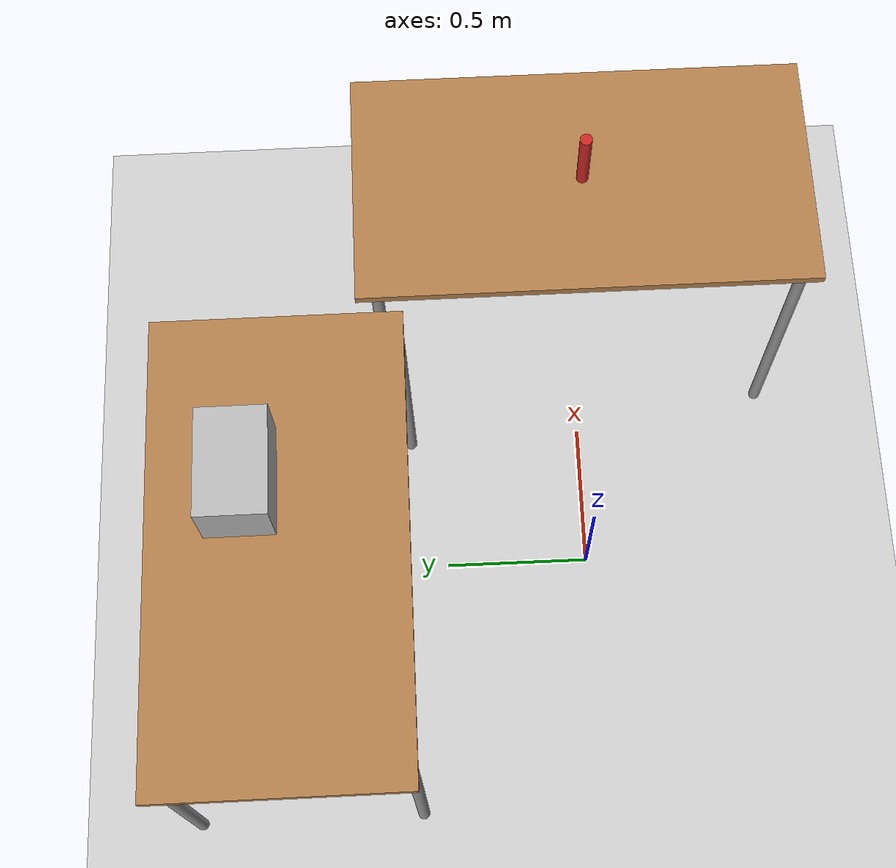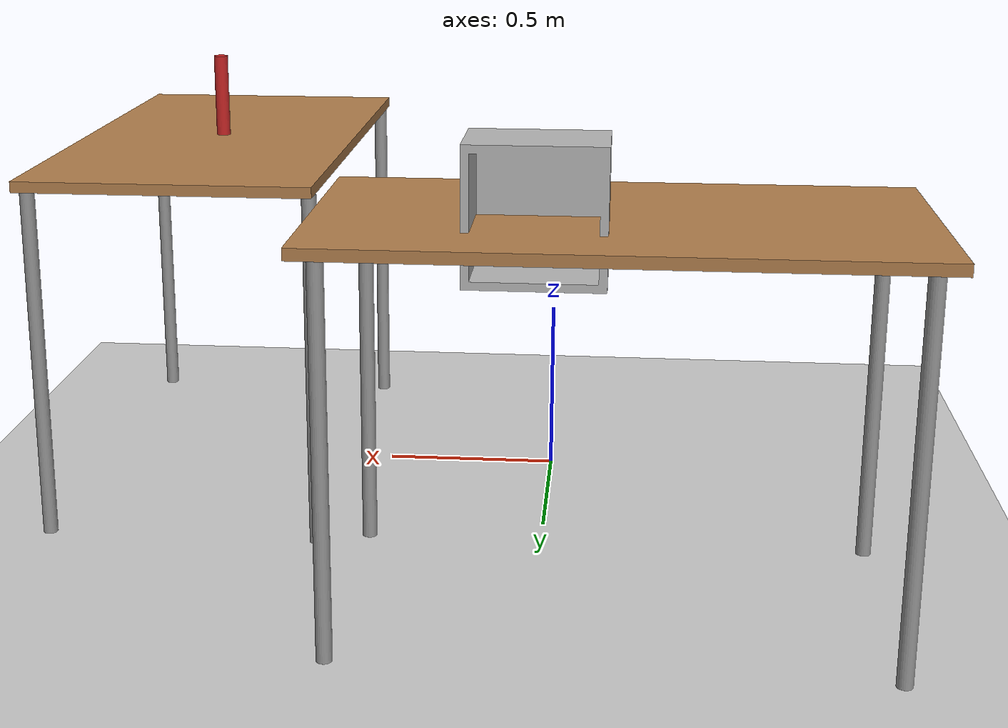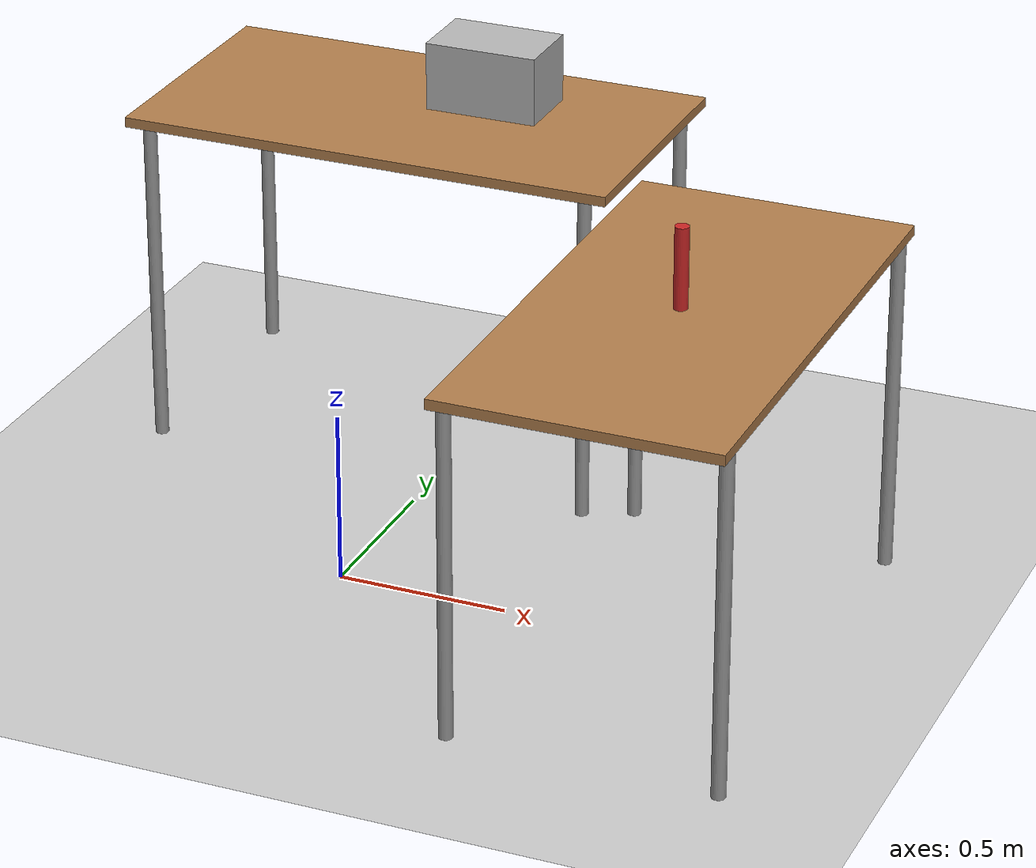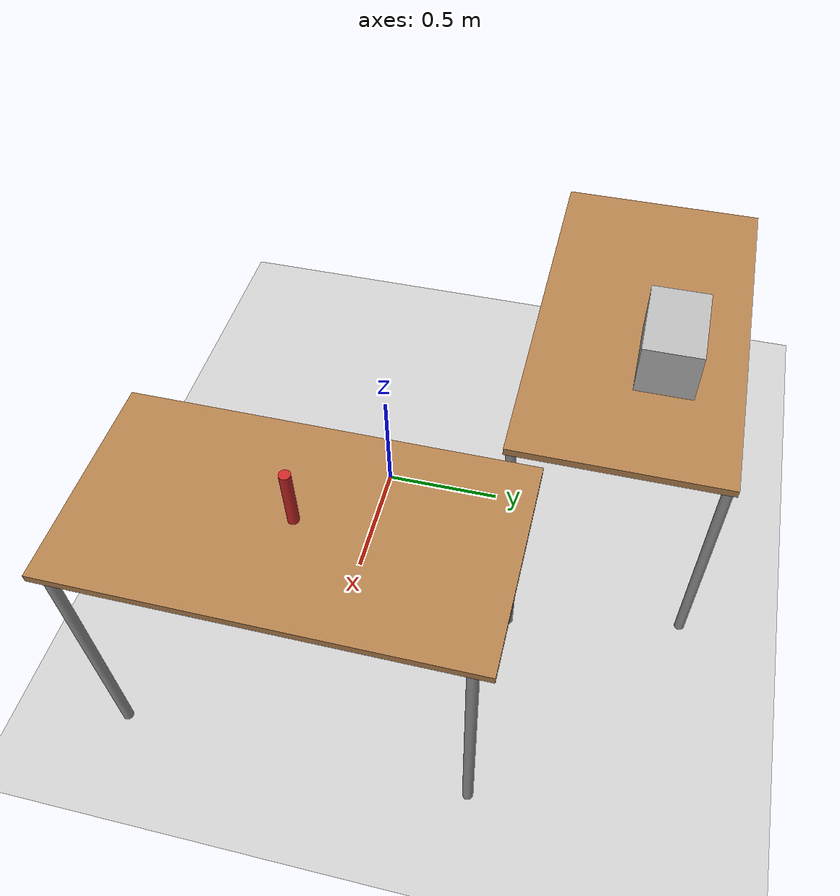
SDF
<?xml version="1.0" ?>
<sdf version="1.4">
  <world name="default">
    <include>
      <uri>model://ground_plane</uri>
    </include>
    <include>
      <uri>model://sun</uri>
    </include>
    <include>
      <uri>model://table</uri>
      <name>table1</name>
      <pose>1.0 0.0 0.0 0 0 -1.5708</pose>
    </include>
    <include>
      <uri>model://object</uri>
      <name>object</name>
      <pose>1.0 0.0 1.05 1.5708 0 1.5708</pose>
    </include>
    <include>
      <uri>model://table</uri>
      <name>table2</name>
      <pose>-0.2 1.0 0.0 0 0 0</pose>
    </include>
    <include>
      <uri>model://FR_box</uri>
      <name>boxx</name>
      <pose>0.0 1.0 1.05 0 0 0</pose>
    </include>
  </world>
</sdf>

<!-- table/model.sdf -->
<sdf version="1.5">
  <model name="table">
    <static>true</static>
    <link name="link">
      <collision name="surface">
        <pose>0 0 1.0 0 0 0</pose>
        <geometry>
          <box>
            <size>1.5 0.8 0.03</size>
          </box>
        </geometry>
        <surface>
          <friction>
            <ode>
              <mu>0.6</mu>
              <mu2>0.6</mu2>
            </ode>
          </friction>
        </surface>
      </collision>
      <visual name="visual1">
        <pose>0 0 1.0 0 0 0</pose>
        <geometry>
          <box>
            <size>1.5 0.8 0.03</size>
          </box>
        </geometry>
        <material>
          <script>
            <uri>model://media/materials/scripts/gazebo.material</uri>
            <name>Gazebo/Wood</name>
          </script>
        </material>
      </visual>
      <collision name="front_left_leg">
        <pose>0.68 0.38 0.5 0 0 0</pose>
        <geometry>
          <cylinder>
            <radius>0.02</radius>
            <length>1.0</length>
          </cylinder>
        </geometry>
      </collision>
      <visual name="front_left_leg">
        <pose>0.68 0.38 0.5 0 0 0</pose>
        <geometry>
          <cylinder>
            <radius>0.02</radius>
            <length>1.0</length>
          </cylinder>
        </geometry>
        <material>
          <script>
            <uri>model://media/materials/scripts/gazebo.material</uri>
            <name>Gazebo/Grey</name>
          </script>
        </material>
      </visual>
      <collision name="front_right_leg">
        <pose>0.68 -0.38 0.5 0 0 0</pose>
        <geometry>
          <cylinder>
            <radius>0.02</radius>
            <length>1.0</length>
          </cylinder>
        </geometry>
      </collision>
      <visual name="front_right_leg">
        <pose>0.68 -0.38 0.5 0 0 0</pose>
        <geometry>
          <cylinder>
            <radius>0.02</radius>
            <length>1.0</length>
          </cylinder>
        </geometry>
        <material>
          <script>
            <uri>model://media/materials/scripts/gazebo.material</uri>
            <name>Gazebo/Grey</name>
          </script>
        </material>
      </visual>
      <collision name="back_right_leg">
        <pose>-0.68 -0.38 0.5 0 0 0</pose>
        <geometry>
          <cylinder>
            <radius>0.02</radius>
            <length>1.0</length>
          </cylinder>
        </geometry>
      </collision>
      <visual name="back_right_leg">
        <pose>-0.68 -0.38 0.5 0 0 0</pose>
        <geometry>
          <cylinder>
            <radius>0.02</radius>
            <length>1.0</length>
          </cylinder>
        </geometry>
        <material>
          <script>
            <uri>model://media/materials/scripts/gazebo.material</uri>
            <name>Gazebo/Grey</name>
          </script>
        </material>
      </visual>
      <collision name="back_left_leg">
        <pose>-0.68 0.38 0.5 0 0 0</pose>
        <geometry>
          <cylinder>
            <radius>0.02</radius>
            <length>1.0</length>
          </cylinder>
        </geometry>
      </collision>
      <visual name="back_left_leg">
        <pose>-0.68 0.38 0.5 0 0 0</pose>
        <geometry>
          <cylinder>
            <radius>0.02</radius>
            <length>1.0</length>
          </cylinder>
        </geometry>
        <material>
          <script>
            <uri>model://media/materials/scripts/gazebo.material</uri>
            <name>Gazebo/Grey</name>
          </script>
        </material>
      </visual>
    </link>
  </model>
</sdf>

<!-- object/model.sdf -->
<sdf version="1.5">
  <model name="object">
    <link name="link">
      <pose>0 0 0 1.57079632679 0 0</pose>
      <gravity>false</gravity>
      <inertial name="inertial">
        <pose>0 0 0 0 0 0</pose>
        <mass>0.00001</mass>
        <inertia>
          <ixx>0.00001</ixx>
          <ixy>0</ixy>
          <ixz>0</ixz>
          <iyy>0.00001</iyy>
          <iyz>0</iyz>
          <izz>0.00001</izz>
        </inertia>
      </inertial>

      <collision name="collision">
        <geometry>
          <cylinder>
            <length>0.4</length>
            <radius>0.02</radius>
          </cylinder>
        </geometry>
        <surface>
          <contact>
            <ode>
              <min_depth>0.001</min_depth>
              <max_vel>1000</max_vel>
            </ode>
          </contact>
          <friction>
            <ode>
              <mu>100000</mu>
              <mu2>100000</mu2>
            </ode>
          </friction>
        </surface>
      </collision>

      <visual name="visual">
        <cast_shadows>false</cast_shadows>
        <pose>0 0 0 0 0 0</pose>
        <geometry>
          <cylinder>
            <length>0.4</length>
            <radius>0.02</radius>
          </cylinder>
        </geometry>
        <material>
          <script>
            <uri>__default__</uri>
            <name>Gazebo/Red</name>
          </script>
        </material>
      </visual>
    </link>
  </model>
</sdf>

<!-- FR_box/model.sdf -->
<sdf version="1.5">
  <model name="FR_box">
    <link name="link">
      <inertial>
        <mass>5.0</mass>
        <inertia>
          <ixx>0.0058</ixx>
          <ixy>0</ixy>
          <ixz>0</ixz>
          <iyy>0.0058</iyy>
          <iyz>0</iyz>
          <izz>0.00019</izz>
        </inertia>
      </inertial>

      <collision name="collision">
        <pose>0 0 0 0 0 0</pose>
        <geometry>
          <mesh>
            <uri>model://FR_box/meshes/FR_box.stl</uri>
            <scale>0.01 0.01 0.01</scale>
          </mesh>
        </geometry>
        <surface>
          <friction>
            <ode>
              <mu>0.01</mu>
              <mu2>0.01</mu2>
            </ode>
          </friction>
        </surface>
      </collision>

      <visual name="visual">
        <geometry>
          <mesh>
            <uri>model://FR_box/meshes/FR_box.stl</uri>
            <scale>0.01 0.01 0.01</scale>
          </mesh>
        </geometry>
      </visual>
    </link>
  </model>
</sdf>
